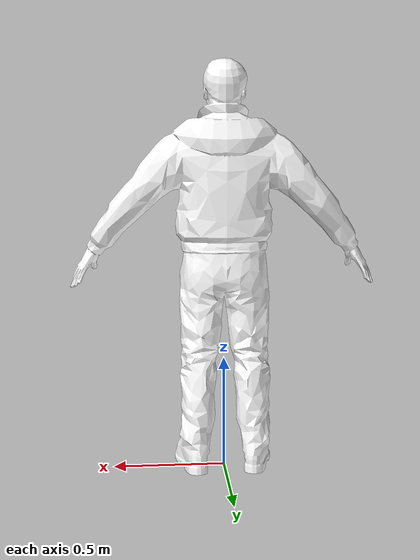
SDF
<?xml version="1.0" ?>
<sdf version="1.6">
  <model name="rescue_randy">
    <static>true</static>
    <link name="link">
      <collision name="collision">
        <geometry>
          <mesh>
            <uri>model://rescue_randy/meshes/rescue_randy.dae</uri>
          </mesh>
        </geometry>
      </collision>
      <visual name="visual">
        <geometry>
          <mesh>
            <uri>model://rescue_randy/meshes/rescue_randy.dae</uri>
          </mesh>
        </geometry>
        <material>
          <diffuse>1.0 1.0 1.0</diffuse>
          <specular>1.0 1.0 1.0</specular>
          <pbr>
            <metal>
              <albedo_map>model://rescue_randy/materials/textures/rescue_randy_albedo.png</albedo_map>
              <normal_map>model://rescue_randy/materials/textures/rescue_randy_normal.png</normal_map>
              <metalness_map>model://rescue_randy/materials/textures/rescue_randy_metalness.png</metalness_map>
              <roughness_map>model://rescue_randy/materials/textures/rescue_randy_roughness.png</roughness_map>
            </metal>
          </pbr>
          <!-- fallback to classic if no PBR support-->
          <script>
            <uri>model://rescue_randy/materials/scripts</uri>
            <uri>model://rescue_randy/materials/textures</uri>
            <name>RescueRandy/Diffuse</name>
          </script>
        </material>
        <plugin
          filename="ignition-gazebo-thermal-system"
          name="ignition::gazebo::systems::Thermal">
          <heat_signature>materials/textures/RescueRandy_Thermal.png</heat_signature>
          <max_temp>310</max_temp>
        </plugin>
      </visual>
    </link>
  </model>
</sdf>
